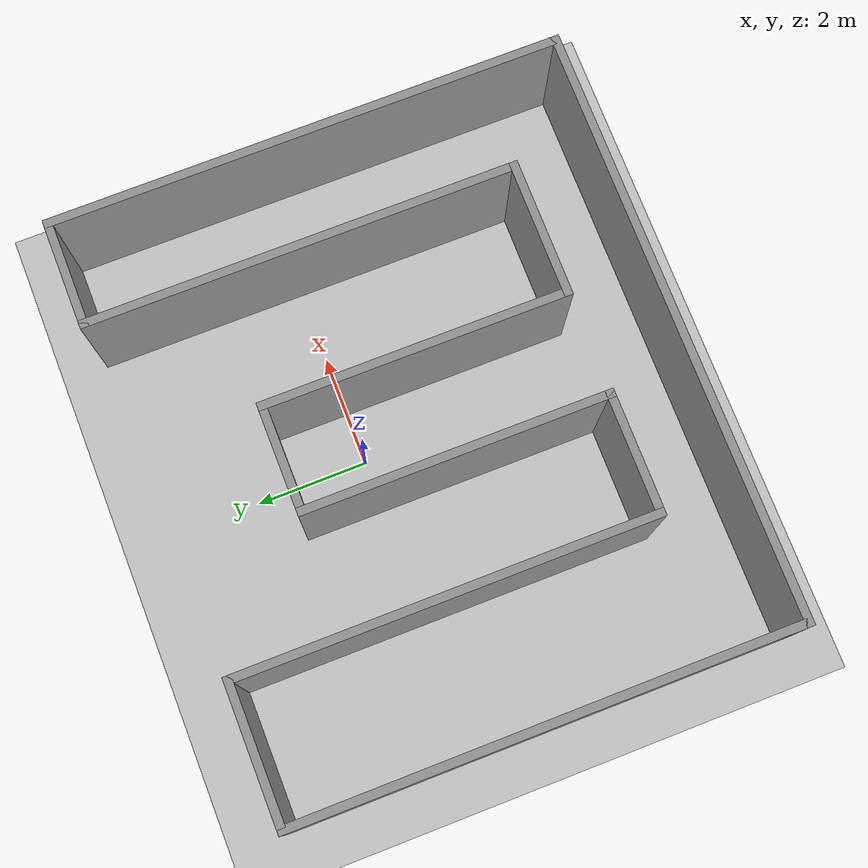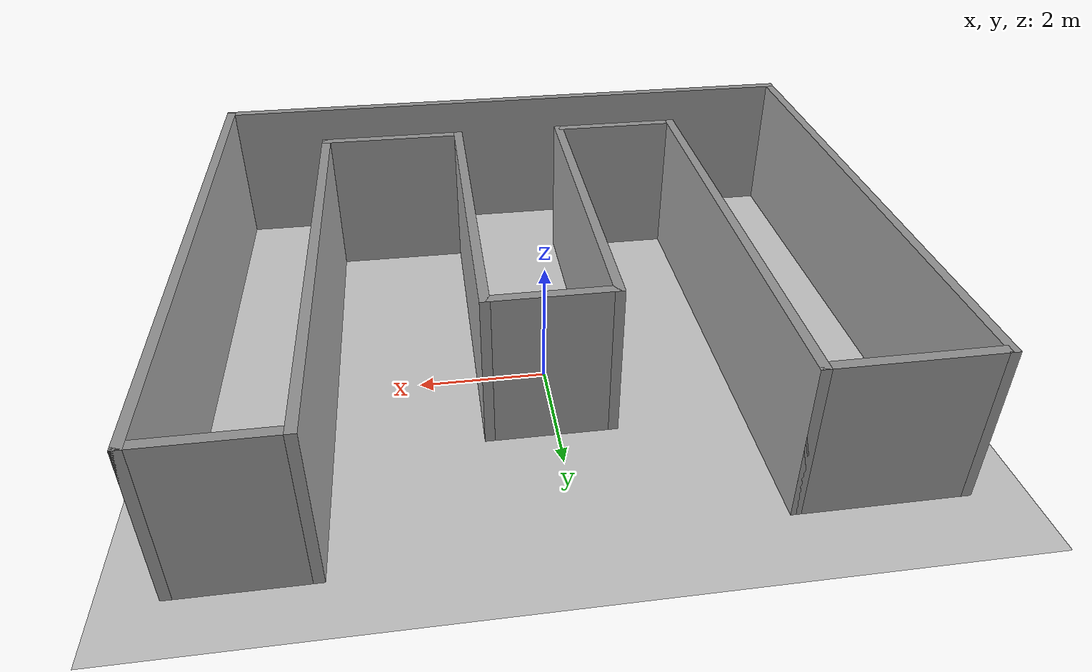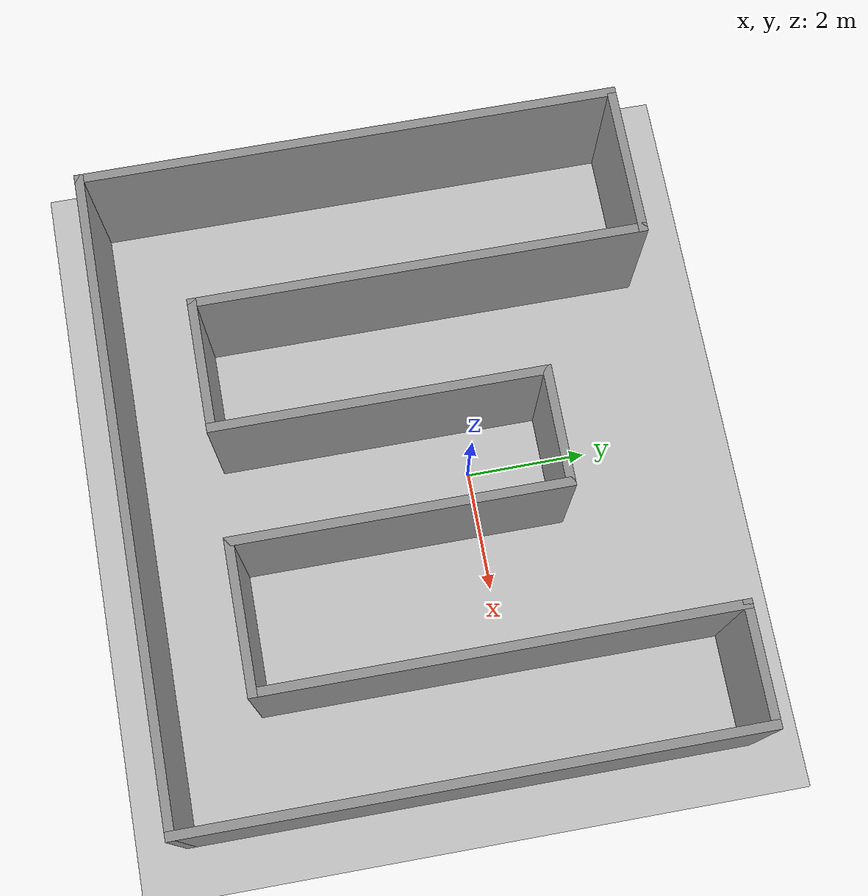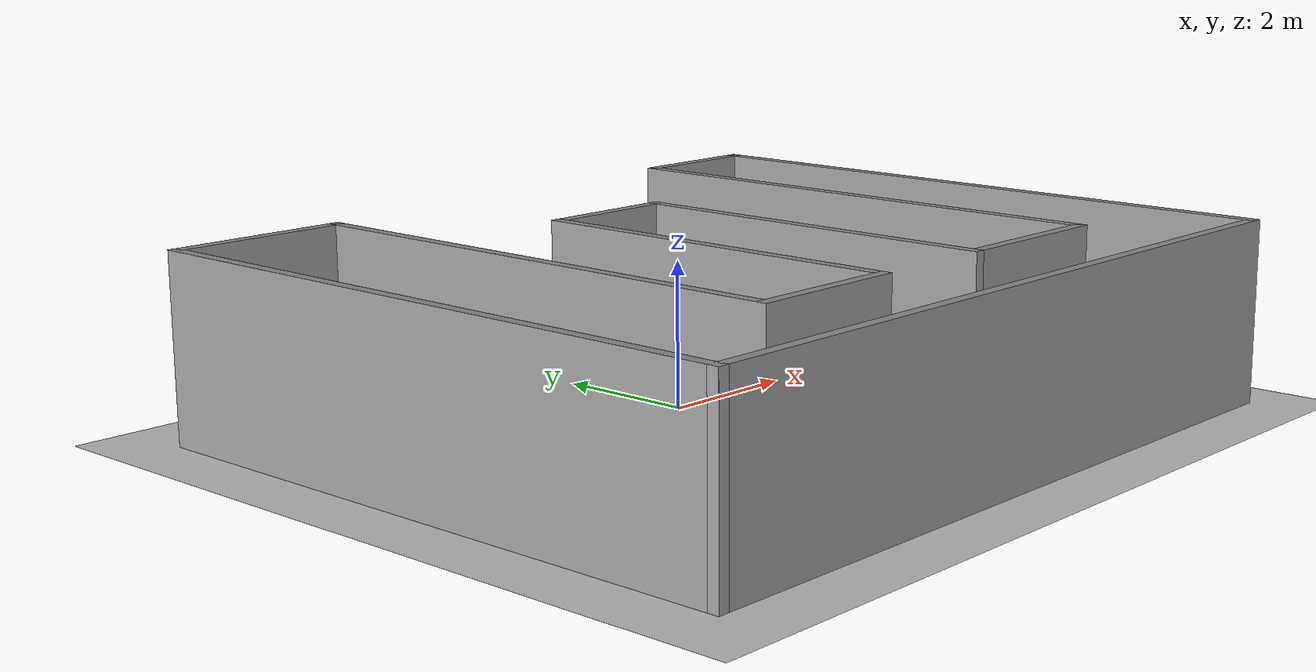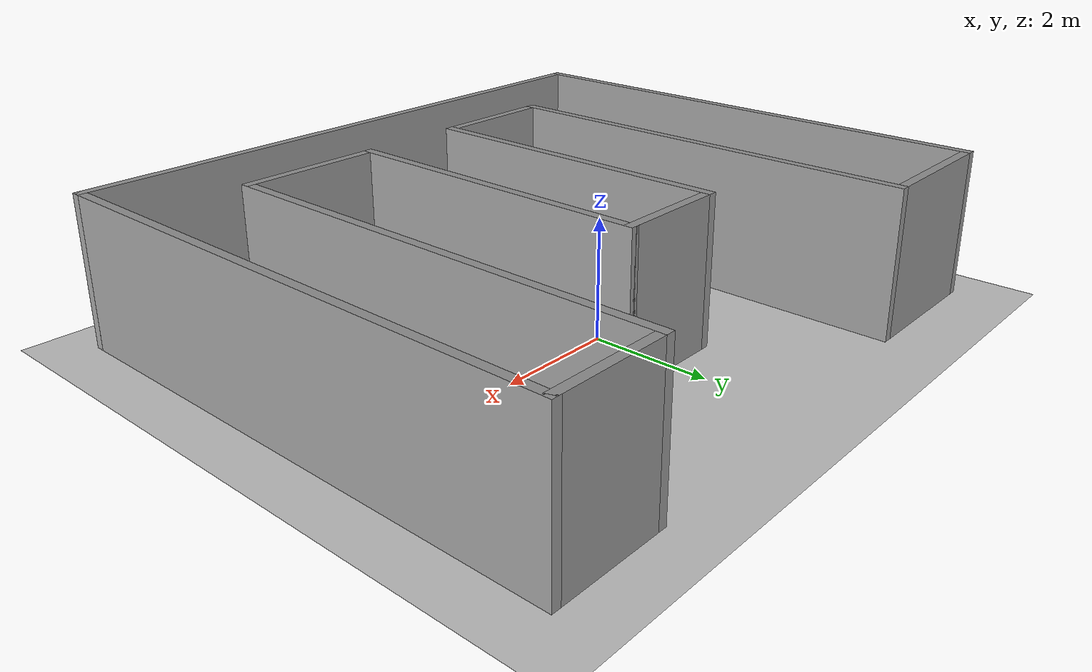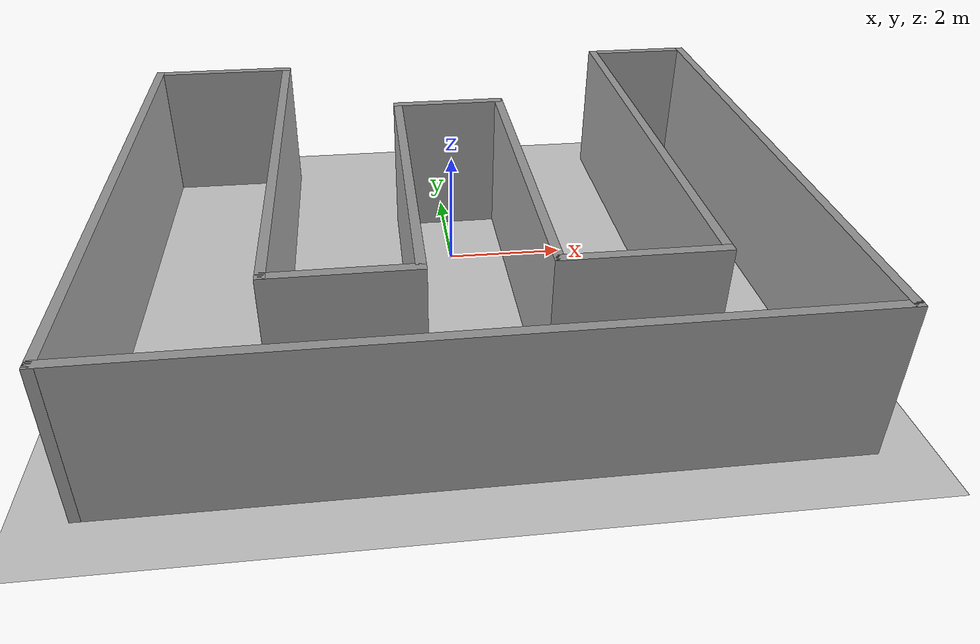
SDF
<sdf version="1.6">
 <world name="default">
  <light name="sun" type="directional">
   <pose>0 0 10 0 -0 0</pose>
   <diffuse>0.8 0.8 0.8 1</diffuse>
   <specular>0.2 0.2 0.2 1</specular>
   <attenuation>
    <range>1000</range>
    <constant>0.9</constant>
    <linear>0.01</linear>
    <quadratic>0.001</quadratic>
   </attenuation>
   <direction>-0.5 0.1 -0.9</direction>
  </light>
  <model name="ground_plane">
   <static>1</static>
   <link name="link">
    <collision name="collision">
     <geometry><plane><normal>0 0 1</normal><size>100 100</size></plane></geometry>
     <surface>
      <contact><collide_bitmask>65535</collide_bitmask></contact>
      <friction><ode><mu>100</mu><mu2>50</mu2></ode></friction>
     </surface>
    </collision>
    <visual name="visual">
     <cast_shadows>0</cast_shadows>
     <geometry><plane><normal>0 0 1</normal><size>100 100</size></plane></geometry>
     <material>
      <script><uri>file://media/materials/scripts/gazebo.material</uri><name>Gazebo/Grey</name></script>
     </material>
    </visual>
   </link>
  </model>
  <gravity>0 0 -9.8</gravity>
  <magnetic_field>6e-06 2.3e-05 -4.2e-05</magnetic_field>
  <atmosphere type="adiabatic"/>
  <physics name="default_physics" default="0" type="ode">
   <max_step_size>0.001</max_step_size>
   <real_time_factor>1</real_time_factor>
   <real_time_update_rate>1000</real_time_update_rate>
  </physics>
  <scene><ambient>0.4 0.4 0.4 1</ambient><background>0.7 0.7 0.7 1</background><shadows>1</shadows></scene>
  <spherical_coordinates>
   <surface_model>EARTH_WGS84</surface_model>
   <latitude_deg>0</latitude_deg>
   <longitude_deg>0</longitude_deg>
   <elevation>0</elevation>
   <heading_deg>0</heading_deg>
  </spherical_coordinates>
  <model name="_UGLY_W_WORLD">
   <pose>-0.085482 -0.954466 0 0 -0 0</pose>
   <link name="Wall_1">
    <collision name="Wall_1_Collision">
     <geometry><box><size>2.5 0.15 2.5</size></box></geometry>
     <pose>0 0 1.25 0 -0 0</pose>
    </collision>
    <visual name="Wall_1_Visual">
     <pose>0 0 1.25 0 -0 0</pose>
     <geometry><box><size>2.5 0.15 2.5</size></box></geometry>
     <material>
      <script><uri>file://media/materials/scripts/gazebo.material</uri><name>Gazebo/Grey</name></script>
      <ambient>1 1 1 1</ambient>
     </material>
     <meta><layer>0</layer></meta>
    </visual>
    <pose>-4.025 4.30014 0 0 -0 0</pose>
   </link>
   <link name="Wall_10">
    <collision name="Wall_10_Collision">
     <geometry><box><size>9.25 0.15 2.5</size></box></geometry>
     <pose>0 0 1.25 0 -0 0</pose>
    </collision>
    <visual name="Wall_10_Visual">
     <pose>0 0 1.25 0 -0 0</pose>
     <geometry><box><size>9.25 0.15 2.5</size></box></geometry>
     <material>
      <script><uri>file://media/materials/scripts/gazebo.material</uri><name>Gazebo/Grey</name></script>
      <ambient>1 1 1 1</ambient>
     </material>
     <meta><layer>0</layer></meta>
    </visual>
    <pose>5.3 0.000141 0 0 0 -1.5708</pose>
   </link>
   <link name="Wall_11">
    <collision name="Wall_11_Collision">
     <geometry><box><size>10.75 0.15 2.5</size></box></geometry>
     <pose>0 0 1.25 0 -0 0</pose>
    </collision>
    <visual name="Wall_11_Visual">
     <pose>0 0 1.25 0 -0 0</pose>
     <geometry><box><size>10.75 0.15 2.5</size></box></geometry>
     <material>
      <script><uri>file://media/materials/scripts/gazebo.material</uri><name>Gazebo/Grey</name></script>
      <ambient>1 1 1 1</ambient>
     </material>
     <meta><layer>0</layer></meta>
    </visual>
    <pose>1e-06 -4.54986 0 0 -0 3.14159</pose>
   </link>
   <link name="Wall_12">
    <collision name="Wall_12_Collision">
     <geometry><box><size>9.00056 0.15 2.5</size></box></geometry>
     <pose>0 0 1.25 0 -0 0</pose>
    </collision>
    <visual name="Wall_12_Visual">
     <pose>0 0 1.25 0 -0 0</pose>
     <geometry><box><size>9.00056 0.15 2.5</size></box></geometry>
     <material>
      <script><uri>file://media/materials/scripts/gazebo.material</uri><name>Gazebo/Grey</name></script>
      <ambient>1 1 1 1</ambient>
     </material>
     <meta><layer>0</layer></meta>
    </visual>
    <pose>-5.3 -0.124859 0 0 -0 1.5708</pose>
   </link>
   <link name="Wall_2">
    <collision name="Wall_2_Collision">
     <geometry><box><size>7.5 0.15 2.5</size></box></geometry>
     <pose>0 0 1.25 0 -0 0</pose>
    </collision>
    <visual name="Wall_2_Visual">
     <pose>0 0 1.25 0 -0 0</pose>
     <geometry><box><size>7.5 0.15 2.5</size></box></geometry>
     <material>
      <script><uri>file://media/materials/scripts/gazebo.material</uri><name>Gazebo/Grey</name></script>
      <ambient>1 1 1 1</ambient>
     </material>
     <meta><layer>0</layer></meta>
    </visual>
    <pose>-2.85 0.625141 0 0 0 -1.5708</pose>
   </link>
   <link name="Wall_3">
    <collision name="Wall_3_Collision">
     <geometry><box><size>2.25 0.15 2.5</size></box></geometry>
     <pose>0 0 1.25 0 -0 0</pose>
    </collision>
    <visual name="Wall_3_Visual">
     <pose>0 0 1.25 0 -0 0</pose>
     <geometry><box><size>2.25 0.15 2.5</size></box></geometry>
     <material>
      <script><uri>file://media/materials/scripts/gazebo.material</uri><name>Gazebo/Grey</name></script>
      <ambient>1 1 1 1</ambient>
     </material>
     <meta><layer>0</layer></meta>
    </visual>
    <pose>-1.8 -3.04986 0 0 -0 0</pose>
   </link>
   <link name="Wall_4">
    <collision name="Wall_4_Collision">
     <geometry><box><size>5.5 0.15 2.5</size></box></geometry>
     <pose>0 0 1.25 0 -0 0</pose>
    </collision>
    <visual name="Wall_4_Visual">
     <pose>0 0 1.25 0 -0 0</pose>
     <geometry><box><size>5.5 0.15 2.5</size></box></geometry>
     <material>
      <script><uri>file://media/materials/scripts/gazebo.material</uri><name>Gazebo/Grey</name></script>
      <ambient>1 1 1 1</ambient>
     </material>
     <meta><layer>0</layer></meta>
    </visual>
    <pose>-0.749999 -0.374859 0 0 -0 1.5708</pose>
   </link>
   <link name="Wall_5">
    <collision name="Wall_5_Collision">
     <geometry><box><size>2 0.15 2.5</size></box></geometry>
     <pose>0 0 1.25 0 -0 0</pose>
    </collision>
    <visual name="Wall_5_Visual">
     <pose>0 0 1.25 0 -0 0</pose>
     <geometry><box><size>2 0.15 2.5</size></box></geometry>
     <material>
      <script><uri>file://media/materials/scripts/gazebo.material</uri><name>Gazebo/Grey</name></script>
      <ambient>1 1 1 1</ambient>
     </material>
     <meta><layer>0</layer></meta>
    </visual>
    <pose>0.175 2.30014 0 0 -0 0</pose>
   </link>
   <link name="Wall_6">
    <collision name="Wall_6_Collision">
     <geometry><box><size>5.5 0.15 2.5</size></box></geometry>
     <pose>0 0 1.25 0 -0 0</pose>
    </collision>
    <visual name="Wall_6_Visual">
     <pose>0 0 1.25 0 -0 0</pose>
     <geometry><box><size>5.5 0.15 2.5</size></box></geometry>
     <material>
      <script><uri>file://media/materials/scripts/gazebo.material</uri><name>Gazebo/Grey</name></script>
      <ambient>1 1 1 1</ambient>
     </material>
     <meta><layer>0</layer></meta>
    </visual>
    <pose>1.1 -0.374859 0 0 0 -1.5708</pose>
   </link>
   <link name="Wall_7">
    <collision name="Wall_7_Collision">
     <geometry><box><size>2.5 0.15 2.5</size></box></geometry>
     <pose>0 0 1.25 0 -0 0</pose>
    </collision>
    <visual name="Wall_7_Visual">
     <pose>0 0 1.25 0 -0 0</pose>
     <geometry><box><size>2.5 0.15 2.5</size></box></geometry>
     <material>
      <script><uri>file://media/materials/scripts/gazebo.material</uri><name>Gazebo/Grey</name></script>
      <ambient>1 1 1 1</ambient>
     </material>
     <meta><layer>0</layer></meta>
    </visual>
    <pose>2.275 -3.04986 0 0 -0 0</pose>
   </link>
   <link name="Wall_8">
    <collision name="Wall_8_Collision">
     <geometry><box><size>7.75 0.15 2.5</size></box></geometry>
     <pose>0 0 1.25 0 -0 0</pose>
    </collision>
    <visual name="Wall_8_Visual">
     <pose>0 0 1.25 0 -0 0</pose>
     <geometry><box><size>7.75 0.15 2.5</size></box></geometry>
     <material>
      <script><uri>file://media/materials/scripts/gazebo.material</uri><name>Gazebo/Grey</name></script>
      <ambient>1 1 1 1</ambient>
     </material>
     <meta><layer>0</layer></meta>
    </visual>
    <pose>3.45 0.750141 0 0 -0 1.5708</pose>
   </link>
   <link name="Wall_9">
    <collision name="Wall_9_Collision">
     <geometry><box><size>2 0.15 2.5</size></box></geometry>
     <pose>0 0 1.25 0 -0 0</pose>
    </collision>
    <visual name="Wall_9_Visual">
     <pose>0 0 1.25 0 -0 0</pose>
     <geometry><box><size>2 0.15 2.5</size></box></geometry>
     <material>
      <script><uri>file://media/materials/scripts/gazebo.material</uri><name>Gazebo/Grey</name></script>
      <ambient>1 1 1 1</ambient>
     </material>
     <meta><layer>0</layer></meta>
    </visual>
    <pose>4.375 4.55014 0 0 -0 0</pose>
   </link>
   <static>1</static>
  </model>
 </world>
</sdf>
